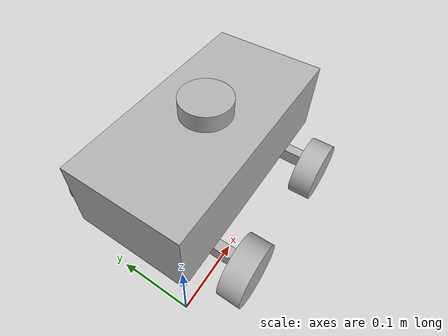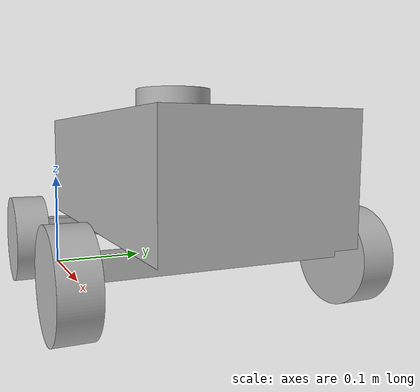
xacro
<?xml version="1.0" ?>
<robot name="new_robot_urdf"
  xmlns:xacro="http://www.ros.org/wiki/xacro">

  <xacro:include filename="$(find ros_arduino_bridge)/urdf/materials.xacro" />
  <xacro:include filename="$(find ros_arduino_bridge)/urdf/new_robot_urdf.trans" />
  <xacro:include filename="$(find ros_arduino_bridge)/urdf/new_robot_urdf.gazebo" />

  <link name="base_link">
    <inertial>
      <origin xyz="0.16003404098199894 0.07999869526838829 0.1125351775810762" rpy="0 0 0"/>
      <mass value="42.407840579162674"/>
      <inertia ixx="0.132584" iyy="0.40276" izz="0.45462" ixy="0.0" iyz="-3e-06" ixz="8.7e-05"/>
    </inertial>
    <visual>
      <origin xyz="0 0 0" rpy="0 0 0"/>
      <geometry>
        <mesh filename="file://$(find ros_arduino_bridge)/meshes/base_link.stl" scale="0.001 0.001 0.001"/>
      </geometry>
      <material name="silver"/>
    </visual>
    <collision>
      <origin xyz="0 0 0" rpy="0 0 0"/>
      <geometry>
        <mesh filename="file://$(find ros_arduino_bridge)/meshes/base_link.stl" scale="0.001 0.001 0.001"/>
      </geometry>
    </collision>
  </link>

  <link name="fore_right_wheel_1">
    <inertial>
      <origin xyz="1.9740023782244265e-07 -0.015499526820072326 6.938893903907228e-18" rpy="0 0 0"/>
      <mass value="1.3808899961285064"/>
      <inertia ixx="0.000734" iyy="0.001247" izz="0.000734" ixy="0.0" iyz="-0.0" ixz="0.0"/>
    </inertial>
    <visual>
      <origin xyz="-0.256429 0.027778 -0.0425" rpy="0 0 0"/>
      <geometry>
        <mesh filename="file://$(find ros_arduino_bridge)/meshes/fore_right_wheel_1.stl" scale="0.001 0.001 0.001"/>
      </geometry>
      <material name="silver"/>
    </visual>
    <collision>
      <origin xyz="-0.256429 0.027778 -0.0425" rpy="0 0 0"/>
      <geometry>
        <mesh filename="file://$(find ros_arduino_bridge)/meshes/fore_right_wheel_1.stl" scale="0.001 0.001 0.001"/>
      </geometry>
    </collision>
  </link>

  <link name="back_right_wheel_1">
    <inertial>
      <origin xyz="1.9740023783632044e-07 -0.015499526820072333 0.0" rpy="0 0 0"/>
      <mass value="1.3808899961285064"/>
      <inertia ixx="0.000734" iyy="0.001247" izz="0.000734" ixy="0.0" iyz="0.0" ixz="0.0"/>
    </inertial>
    <visual>
      <origin xyz="-0.066429 0.027778 -0.0425" rpy="0 0 0"/>
      <geometry>
        <mesh filename="file://$(find ros_arduino_bridge)/meshes/back_right_wheel_1.stl" scale="0.001 0.001 0.001"/>
      </geometry>
      <material name="silver"/>
    </visual>
    <collision>
      <origin xyz="-0.066429 0.027778 -0.0425" rpy="0 0 0"/>
      <geometry>
        <mesh filename="file://$(find ros_arduino_bridge)/meshes/back_right_wheel_1.stl" scale="0.001 0.001 0.001"/>
      </geometry>
    </collision>
  </link>

  <link name="fore_left_wheel_1">
    <inertial>
      <origin xyz="1.9740023782244265e-07 0.015499969520726242 0.0" rpy="0 0 0"/>
      <mass value="1.3808899961285064"/>
      <inertia ixx="0.000734" iyy="0.001247" izz="0.000734" ixy="0.0" iyz="-0.0" ixz="0.0"/>
    </inertial>
    <visual>
      <origin xyz="-0.256429 -0.187668 -0.0425" rpy="0 0 0"/>
      <geometry>
        <mesh filename="file://$(find ros_arduino_bridge)/meshes/fore_left_wheel_1.stl" scale="0.001 0.001 0.001"/>
      </geometry>
      <material name="silver"/>
    </visual>
    <collision>
      <origin xyz="-0.256429 -0.187668 -0.0425" rpy="0 0 0"/>
      <geometry>
        <mesh filename="file://$(find ros_arduino_bridge)/meshes/fore_left_wheel_1.stl" scale="0.001 0.001 0.001"/>
      </geometry>
    </collision>
  </link>

  <link name="back_left_wheel_1">
    <inertial>
      <origin xyz="1.97400237864076e-07 0.015499969520726242 0.0" rpy="0 0 0"/>
      <mass value="1.3808899961285062"/>
      <inertia ixx="0.000734" iyy="0.001247" izz="0.000734" ixy="0.0" iyz="-0.0" ixz="0.0"/>
    </inertial>
    <visual>
      <origin xyz="-0.066429 -0.187668 -0.0425" rpy="0 0 0"/>
      <geometry>
        <mesh filename="file://$(find ros_arduino_bridge)/meshes/back_left_wheel_1.stl" scale="0.001 0.001 0.001"/>
      </geometry>
      <material name="silver"/>
    </visual>
    <collision>
      <origin xyz="-0.066429 -0.187668 -0.0425" rpy="0 0 0"/>
      <geometry>
        <mesh filename="file://$(find ros_arduino_bridge)/meshes/back_left_wheel_1.stl" scale="0.001 0.001 0.001"/>
      </geometry>
    </collision>
  </link>

  <link name="lidar_1">
    <inertial>
      <origin xyz="-2.7755575615628914e-17 0.0 0.012249999999999955" rpy="0 0 0"/>
      <mass value="0.7285890320350371"/>
      <inertia ixx="0.000256" iyy="0.000256" izz="0.000439" ixy="-0.0" iyz="0.0" ixz="0.0"/>
    </inertial>
    <visual>
      <origin xyz="-0.16 -0.08 -0.1655" rpy="0 0 0"/>
      <geometry>
        <mesh filename="file://$(find ros_arduino_bridge)/meshes/lidar_1.stl" scale="0.001 0.001 0.001"/>
      </geometry>
      <material name="silver"/>
    </visual>
    <collision>
      <origin xyz="-0.16 -0.08 -0.1655" rpy="0 0 0"/>
      <geometry>
        <mesh filename="file://$(find ros_arduino_bridge)/meshes/lidar_1.stl" scale="0.001 0.001 0.001"/>
      </geometry>
    </collision>
  </link>

  <joint name="front_right_wheel_joint" type="continuous">
    <origin xyz="0.256429 -0.027778 0.0425" rpy="0 0 0"/>
    <parent link="base_link"/>
    <child link="fore_right_wheel_1"/>
    <axis xyz="0.0 -1.0 0.0"/>
  </joint>

  <joint name="back_right_wheel_joint" type="continuous">
    <origin xyz="0.066429 -0.027778 0.0425" rpy="0 0 0"/>
    <parent link="base_link"/>
    <child link="back_right_wheel_1"/>
    <axis xyz="0.0 -1.0 0.0"/>
  </joint>

  <joint name="front_left_wheel_joint" type="continuous">
    <origin xyz="0.256429 0.187668 0.0425" rpy="0 0 0"/>
    <parent link="base_link"/>
    <child link="fore_left_wheel_1"/>
    <axis xyz="0.0 1.0 0.0"/>
  </joint>

  <joint name="back_left_wheel_joint" type="continuous">
    <origin xyz="0.066429 0.187668 0.0425" rpy="0 0 0"/>
    <parent link="base_link"/>
    <child link="back_left_wheel_1"/>
    <axis xyz="0.0 1.0 0.0"/>
  </joint>

  <joint name="lidar_joint" type="fixed">
    <origin xyz="0.16 0.08 0.1655" rpy="0 0 0"/>
    <parent link="base_link"/>
    <child link="lidar_1"/>
  </joint>

  <!-- Add laser frame for SLAM -->
  <link name="laser">
  </link>

  <joint name="laser_joint" type="fixed">
    <origin xyz="0.0 0.0 0.012" rpy="0 0 0"/>
    <parent link="lidar_1"/>
    <child link="laser"/>
  </joint>

  <!-- IMU Link (MPU6050) - 3cm below base_link center -->
  <link name="imu_link">
    <inertial>
      <origin xyz="1.974002378779538e-07 0.0 -0.000999999999999987" rpy="0 0 0"/>
      <mass value="0.15700000000000014"/>
      <inertia ixx="0.000131" iyy="0.000131" izz="0.000262" ixy="0.0" iyz="0.0" ixz="0.0"/>
    </inertial>
    <visual>
      <origin xyz="-0.161429 -0.08 -0.0625" rpy="0 0 0"/>
      <geometry>
        <mesh filename="file://$(find ros_arduino_bridge)/meshes/imu_1.stl" scale="0.001 0.001 0.001"/>
      </geometry>
      <material name="silver"/>
    </visual>
    <collision>
      <origin xyz="-0.161429 -0.08 -0.0625" rpy="0 0 0"/>
      <geometry>
        <mesh filename="file://$(find ros_arduino_bridge)/meshes/imu_1.stl" scale="0.001 0.001 0.001"/>
      </geometry>
    </collision>
  </link>

  <joint name="imu_joint" type="fixed">
    <origin xyz="0.161429 0.08 0.0625" rpy="0 0 0"/>
    <parent link="base_link"/>
    <child link="imu_link"/>
  </joint>

</robot>

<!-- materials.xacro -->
<robot name="new_robot_urdf" xmlns:xacro="http://www.ros.org/wiki/xacro" >

<material name="silver">
  <color rgba="0.700 0.700 0.700 1.000"/>
</material>

</robot>

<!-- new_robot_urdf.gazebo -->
<robot name="new_robot_urdf" xmlns:xacro="http://www.ros.org/wiki/xacro" >

<xacro:property name="body_color" value="Gazebo/Silver" />

<!-- removed legacy ROS(1) gazebo ros_control plugin to avoid conflicts with gazebo_ros2_control -->
<gazebo reference="base_link">
  <material>${body_color}</material>
  <mu1>0.2</mu1>
  <mu2>0.2</mu2>
  <self_collide>true</self_collide>
  <gravity>true</gravity>
</gazebo>

<!-- Add ros2_control plugin for Gazebo -->
<gazebo>
  <plugin name="gazebo_ros2_control" filename="libgazebo_ros2_control.so">
    <ros>
      <namespace>/</namespace>
    </ros>
    <parameters>$(find ros_arduino_bridge)/config/ros2_control.yaml</parameters>
  </plugin>
</gazebo>

<gazebo reference="fore_right_wheel_1">
  <material>${body_color}</material>
  <mu1>0.2</mu1>
  <mu2>0.2</mu2>
  <self_collide>true</self_collide>
</gazebo>

<gazebo reference="back_right_wheel_1">
  <material>${body_color}</material>
  <mu1>0.2</mu1>
  <mu2>0.2</mu2>
  <self_collide>true</self_collide>
</gazebo>

<gazebo reference="fore_left_wheel_1">
  <material>${body_color}</material>
  <mu1>0.2</mu1>
  <mu2>0.2</mu2>
  <self_collide>true</self_collide>
</gazebo>

<gazebo reference="back_left_wheel_1">
  <material>${body_color}</material>
  <mu1>0.2</mu1>
  <mu2>0.2</mu2>
  <self_collide>true</self_collide>
</gazebo>

<gazebo reference="lidar_1">
  <material>${body_color}</material>
  <mu1>0.2</mu1>
  <mu2>0.2</mu2>
  <self_collide>true</self_collide>
</gazebo>

</robot>
